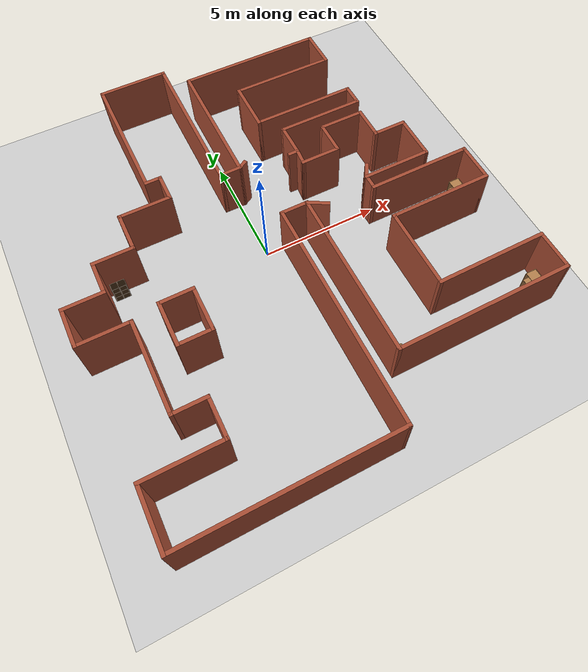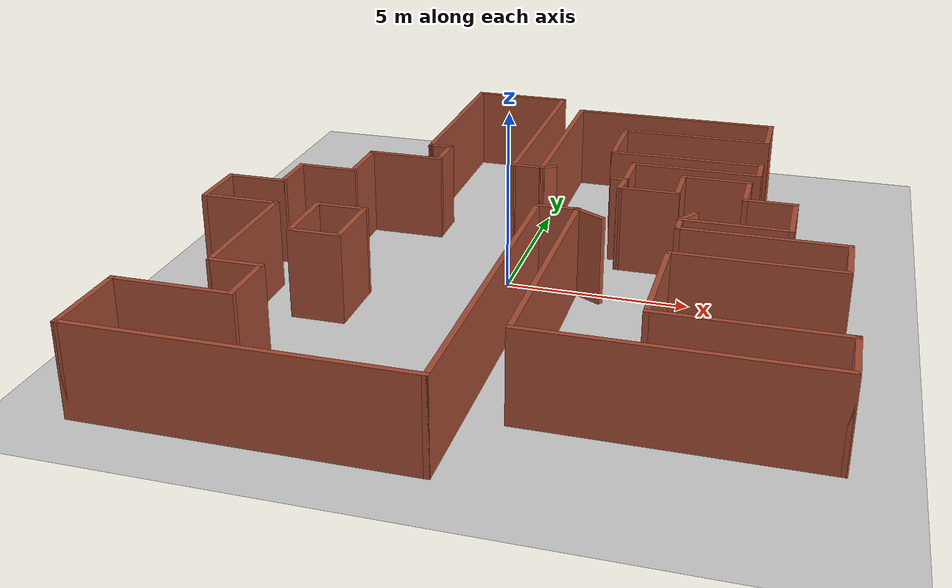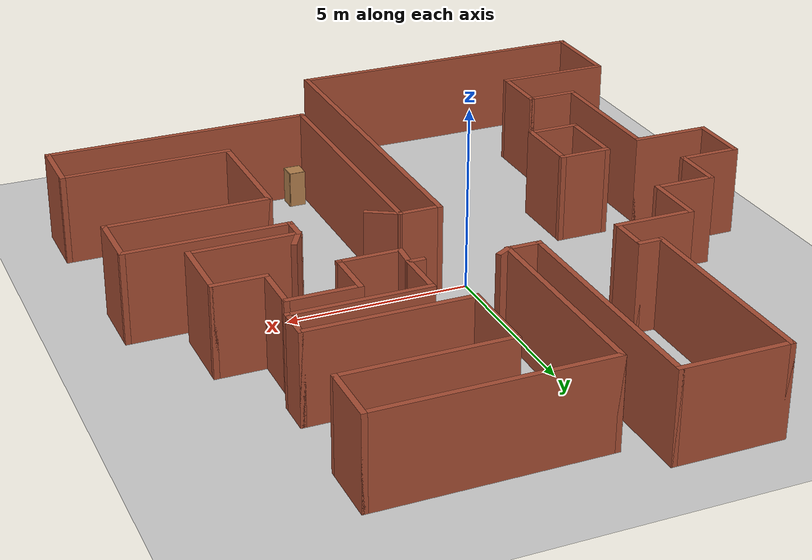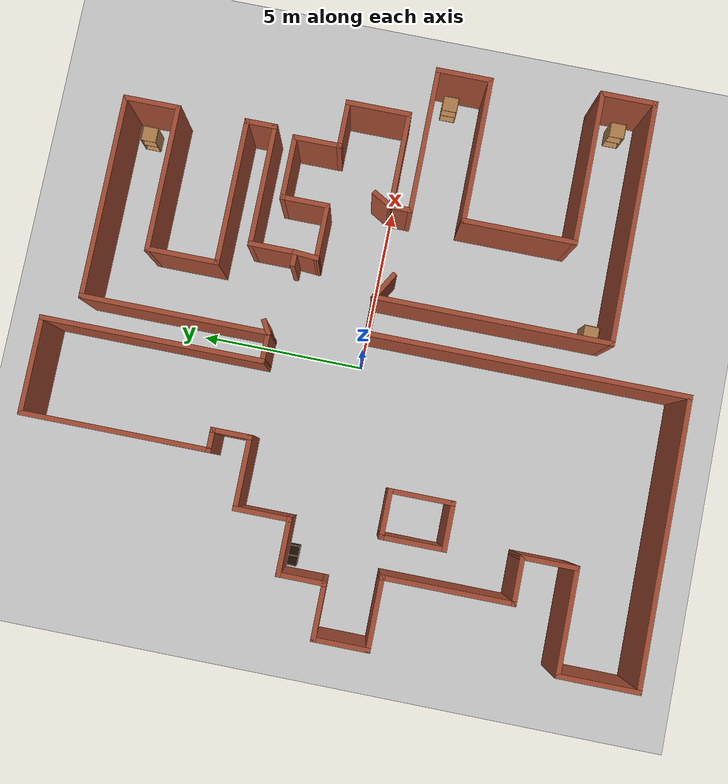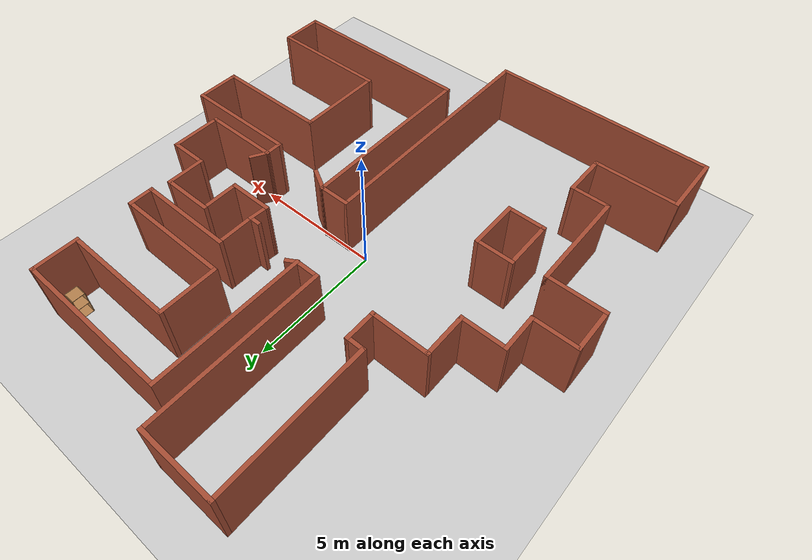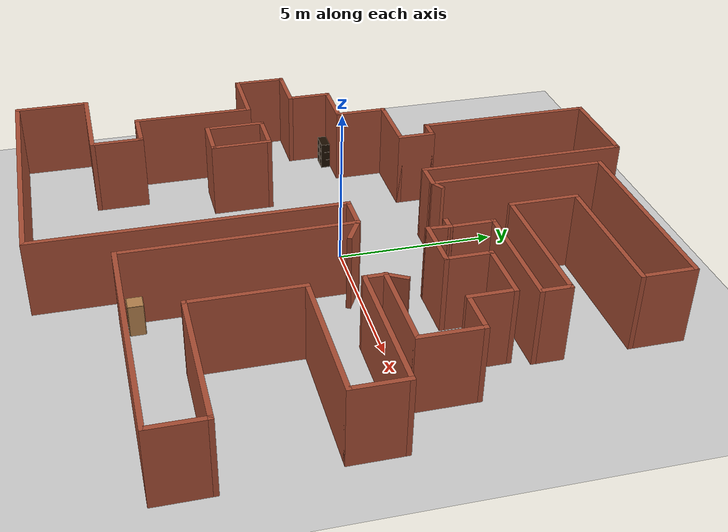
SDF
<sdf version="1.6">
 <world name="default">
  <light name="sun" type="directional">
   <pose>0 0 10 0 -0 0</pose>
   <diffuse>0.8 0.8 0.8 1</diffuse>
   <specular>0.2 0.2 0.2 1</specular>
   <attenuation>
    <range>1000</range>
    <constant>0.9</constant>
    <linear>0.01</linear>
    <quadratic>0.001</quadratic>
   </attenuation>
   <direction>-0.5 0.1 -0.9</direction>
  </light>
  <model name="ground_plane">
   <static>1</static>
   <link name="link">
    <collision name="collision">
     <geometry><plane><normal>0 0 1</normal><size>100 100</size></plane></geometry>
     <surface>
      <contact><collide_bitmask>65535</collide_bitmask></contact>
      <friction><ode><mu>100</mu><mu2>50</mu2></ode></friction>
     </surface>
    </collision>
    <visual name="visual">
     <cast_shadows>0</cast_shadows>
     <geometry><plane><normal>0 0 1</normal><size>100 100</size></plane></geometry>
     <material>
      <script><uri>file://media/materials/scripts/gazebo.material</uri><name>Gazebo/Grey</name></script>
     </material>
    </visual>
   </link>
  </model>
  <gravity>0 0 -9.8</gravity>
  <magnetic_field>6e-06 2.3e-05 -4.2e-05</magnetic_field>
  <atmosphere type="adiabatic"/>
  <physics name="default_physics" default="0" type="ode">
   <max_step_size>0.001</max_step_size>
   <real_time_factor>1</real_time_factor>
   <real_time_update_rate>1000</real_time_update_rate>
  </physics>
  <scene><ambient>0.4 0.4 0.4 1</ambient><background>0.7 0.7 0.7 1</background><shadows>1</shadows></scene>
  <audio><device>default</device></audio>
  <spherical_coordinates>
   <surface_model>EARTH_WGS84</surface_model>
   <latitude_deg>0</latitude_deg>
   <longitude_deg>0</longitude_deg>
   <elevation>0</elevation>
   <heading_deg>0</heading_deg>
  </spherical_coordinates>
  <model name="map_121">
   <pose>0.555625 -0.064925 0 0 -0 0</pose>
   <link name="Wall_0">
    <collision name="Wall_0_Collision">
     <geometry><box><size>5.75 0.15 2.5</size></box></geometry>
     <pose>0 0 1.25 0 -0 0</pose>
    </collision>
    <visual name="Wall_0_Visual">
     <pose>0 0 1.25 0 -0 0</pose>
     <geometry><box><size>5.75 0.15 2.5</size></box></geometry>
     <material>
      <script><uri>file://media/materials/scripts/gazebo.material</uri><name>Gazebo/Bricks</name></script>
      <ambient>1 1 1 1</ambient>
     </material>
     <meta><layer>0</layer></meta>
    </visual>
    <pose>-4 6.725 0 0 -0 -1.5708</pose>
   </link>
   <link name="Wall_1">
    <collision name="Wall_1_Collision">
     <geometry><box><size>0.75 0.15 2.5</size></box></geometry>
     <pose>0 0 1.25 0 -0 0</pose>
    </collision>
    <visual name="Wall_1_Visual">
     <pose>0 0 1.25 0 -0 0</pose>
     <geometry><box><size>0.75 0.15 2.5</size></box></geometry>
     <material>
      <script><uri>file://media/materials/scripts/gazebo.material</uri><name>Gazebo/Bricks</name></script>
      <ambient>1 1 1 1</ambient>
     </material>
     <meta><layer>0</layer></meta>
    </visual>
    <pose>-3.7 3.925 0 0 -0 0</pose>
   </link>
   <link name="Wall_10">
    <collision name="Wall_10_Collision">
     <geometry><box><size>1.75 0.15 2.5</size></box></geometry>
     <pose>0 0 1.25 0 -0 0</pose>
    </collision>
    <visual name="Wall_10_Visual">
     <pose>0 0 1.25 0 -0 0</pose>
     <geometry><box><size>1.75 0.15 2.5</size></box></geometry>
     <material>
      <script><uri>file://media/materials/scripts/gazebo.material</uri><name>Gazebo/Bricks</name></script>
      <ambient>1 1 1 1</ambient>
     </material>
     <meta><layer>0</layer></meta>
    </visual>
    <pose>-8.7 -0.925 0 0 -0 -1.5708</pose>
   </link>
   <link name="Wall_11">
    <collision name="Wall_11_Collision">
     <geometry><box><size>2.25 0.15 2.5</size></box></geometry>
     <pose>0 0 1.25 0 -0 0</pose>
    </collision>
    <visual name="Wall_11_Visual">
     <pose>0 0 1.25 0 -0 0</pose>
     <geometry><box><size>2.25 0.15 2.5</size></box></geometry>
     <material>
      <script><uri>file://media/materials/scripts/gazebo.material</uri><name>Gazebo/Bricks</name></script>
      <ambient>1 1 1 1</ambient>
     </material>
     <meta><layer>0</layer></meta>
    </visual>
    <pose>-7.65 -1.725 0 0 -0 0</pose>
   </link>
   <link name="Wall_12">
    <collision name="Wall_12_Collision">
     <geometry><box><size>4 0.15 2.5</size></box></geometry>
     <pose>0 0 1.25 0 -0 0</pose>
    </collision>
    <visual name="Wall_12_Visual">
     <pose>0 0 1.25 0 -0 0</pose>
     <geometry><box><size>4 0.15 2.5</size></box></geometry>
     <material>
      <script><uri>file://media/materials/scripts/gazebo.material</uri><name>Gazebo/Bricks</name></script>
      <ambient>1 1 1 1</ambient>
     </material>
     <meta><layer>0</layer></meta>
    </visual>
    <pose>-6.6 -3.65 0 0 -0 -1.5708</pose>
   </link>
   <link name="Wall_13">
    <collision name="Wall_13_Collision">
     <geometry><box><size>1.5 0.15 2.5</size></box></geometry>
     <pose>0 0 1.25 0 -0 0</pose>
    </collision>
    <visual name="Wall_13_Visual">
     <pose>0 0 1.25 0 -0 0</pose>
     <geometry><box><size>1.5 0.15 2.5</size></box></geometry>
     <material>
      <script><uri>file://media/materials/scripts/gazebo.material</uri><name>Gazebo/Bricks</name></script>
      <ambient>1 1 1 1</ambient>
     </material>
     <meta><layer>0</layer></meta>
    </visual>
    <pose>-5.925 -5.575 0 0 -0 0</pose>
   </link>
   <link name="Wall_14">
    <collision name="Wall_14_Collision">
     <geometry><box><size>1.75 0.15 2.5</size></box></geometry>
     <pose>0 0 1.25 0 -0 0</pose>
    </collision>
    <visual name="Wall_14_Visual">
     <pose>0 0 1.25 0 -0 0</pose>
     <geometry><box><size>1.75 0.15 2.5</size></box></geometry>
     <material>
      <script><uri>file://media/materials/scripts/gazebo.material</uri><name>Gazebo/Bricks</name></script>
      <ambient>1 1 1 1</ambient>
     </material>
     <meta><layer>0</layer></meta>
    </visual>
    <pose>-5.25 -6.375 0 0 -0 -1.5708</pose>
   </link>
   <link name="Wall_15">
    <collision name="Wall_15_Collision">
     <geometry><box><size>3.25 0.15 2.5</size></box></geometry>
     <pose>0 0 1.25 0 -0 0</pose>
    </collision>
    <visual name="Wall_15_Visual">
     <pose>0 0 1.25 0 -0 0</pose>
     <geometry><box><size>3.25 0.15 2.5</size></box></geometry>
     <material>
      <script><uri>file://media/materials/scripts/gazebo.material</uri><name>Gazebo/Bricks</name></script>
      <ambient>1 1 1 1</ambient>
     </material>
     <meta><layer>0</layer></meta>
    </visual>
    <pose>-6.8 -7.175 0 0 -0 3.14159</pose>
   </link>
   <link name="Wall_16">
    <collision name="Wall_16_Collision">
     <geometry><box><size>2.5 0.15 2.5</size></box></geometry>
     <pose>0 0 1.25 0 -0 0</pose>
    </collision>
    <visual name="Wall_16_Visual">
     <pose>0 0 1.25 0 -0 0</pose>
     <geometry><box><size>2.5 0.15 2.5</size></box></geometry>
     <material>
      <script><uri>file://media/materials/scripts/gazebo.material</uri><name>Gazebo/Bricks</name></script>
      <ambient>1 1 1 1</ambient>
     </material>
     <meta><layer>0</layer></meta>
    </visual>
    <pose>-8.35 -8.35 0 0 -0 -1.5708</pose>
   </link>
   <link name="Wall_17">
    <collision name="Wall_17_Collision">
     <geometry><box><size>8.75 0.15 2.5</size></box></geometry>
     <pose>0 0 1.25 0 -0 0</pose>
    </collision>
    <visual name="Wall_17_Visual">
     <pose>0 0 1.25 0 -0 0</pose>
     <geometry><box><size>8.75 0.15 2.5</size></box></geometry>
     <material>
      <script><uri>file://media/materials/scripts/gazebo.material</uri><name>Gazebo/Bricks</name></script>
      <ambient>1 1 1 1</ambient>
     </material>
     <meta><layer>0</layer></meta>
    </visual>
    <pose>-4.05 -9.525 0 0 -0 0</pose>
   </link>
   <link name="Wall_2">
    <collision name="Wall_2_Collision">
     <geometry><box><size>1.25 0.15 2.5</size></box></geometry>
     <pose>0 0 1.25 0 -0 0</pose>
    </collision>
    <visual name="Wall_2_Visual">
     <pose>0 0 1.25 0 -0 0</pose>
     <geometry><box><size>1.25 0.15 2.5</size></box></geometry>
     <material>
      <script><uri>file://media/materials/scripts/gazebo.material</uri><name>Gazebo/Bricks</name></script>
      <ambient>1 1 1 1</ambient>
     </material>
     <meta><layer>0</layer></meta>
    </visual>
    <pose>-3.4 3.375 0 0 -0 -1.5708</pose>
   </link>
   <link name="Wall_21">
    <collision name="Wall_21_Collision">
     <geometry><box><size>7.5 0.15 2.5</size></box></geometry>
     <pose>0 0 1.25 0 -0 0</pose>
    </collision>
    <visual name="Wall_21_Visual">
     <pose>0 0 1.25 0 -0 0</pose>
     <geometry><box><size>7.5 0.15 2.5</size></box></geometry>
     <material>
      <script><uri>file://media/materials/scripts/gazebo.material</uri><name>Gazebo/Bricks</name></script>
      <ambient>1 1 1 1</ambient>
     </material>
     <meta><layer>0</layer></meta>
    </visual>
    <pose>5.025 -7.025 0 0 -0 0</pose>
   </link>
   <link name="Wall_3">
    <collision name="Wall_3_Collision">
     <geometry><box><size>2.25 0.15 2.5</size></box></geometry>
     <pose>0 0 1.25 0 -0 0</pose>
    </collision>
    <visual name="Wall_3_Visual">
     <pose>0 0 1.25 0 -0 0</pose>
     <geometry><box><size>2.25 0.15 2.5</size></box></geometry>
     <material>
      <script><uri>file://media/materials/scripts/gazebo.material</uri><name>Gazebo/Bricks</name></script>
      <ambient>1 1 1 1</ambient>
     </material>
     <meta><layer>0</layer></meta>
    </visual>
    <pose>-4.45 2.825 0 0 -0 3.14159</pose>
   </link>
   <link name="Wall_31">
    <collision name="Wall_31_Collision">
     <geometry><box><size>1.75 0.15 2.5</size></box></geometry>
     <pose>0 0 1.25 0 -0 0</pose>
    </collision>
    <visual name="Wall_31_Visual">
     <pose>0 0 1.25 0 -0 0</pose>
     <geometry><box><size>1.75 0.15 2.5</size></box></geometry>
     <material>
      <script><uri>file://media/materials/scripts/gazebo.material</uri><name>Gazebo/Bricks</name></script>
      <ambient>1 1 1 1</ambient>
     </material>
     <meta><layer>0</layer></meta>
    </visual>
    <pose>8.7 -6.225 0 0 -0 1.5708</pose>
   </link>
   <link name="Wall_32">
    <collision name="Wall_32_Collision">
     <geometry><box><size>4.75 0.15 2.5</size></box></geometry>
     <pose>0 0 1.25 0 -0 0</pose>
    </collision>
    <visual name="Wall_32_Visual">
     <pose>0 0 1.25 0 -0 0</pose>
     <geometry><box><size>4.75 0.15 2.5</size></box></geometry>
     <material>
      <script><uri>file://media/materials/scripts/gazebo.material</uri><name>Gazebo/Bricks</name></script>
      <ambient>1 1 1 1</ambient>
     </material>
     <meta><layer>0</layer></meta>
    </visual>
    <pose>6.4 -5.425 0 0 -0 3.14159</pose>
   </link>
   <link name="Wall_33">
    <collision name="Wall_33_Collision">
     <geometry><box><size>3.5 0.15 2.5</size></box></geometry>
     <pose>0 0 1.25 0 -0 0</pose>
    </collision>
    <visual name="Wall_33_Visual">
     <pose>0 0 1.25 0 -0 0</pose>
     <geometry><box><size>3.5 0.15 2.5</size></box></geometry>
     <material>
      <script><uri>file://media/materials/scripts/gazebo.material</uri><name>Gazebo/Bricks</name></script>
      <ambient>1 1 1 1</ambient>
     </material>
     <meta><layer>0</layer></meta>
    </visual>
    <pose>4.1 -3.75 0 0 -0 1.5708</pose>
   </link>
   <link name="Wall_34">
    <collision name="Wall_34_Collision">
     <geometry><box><size>4.5 0.15 2.5</size></box></geometry>
     <pose>0 0 1.25 0 -0 0</pose>
    </collision>
    <visual name="Wall_34_Visual">
     <pose>0 0 1.25 0 -0 0</pose>
     <geometry><box><size>4.5 0.15 2.5</size></box></geometry>
     <material>
      <script><uri>file://media/materials/scripts/gazebo.material</uri><name>Gazebo/Bricks</name></script>
      <ambient>1 1 1 1</ambient>
     </material>
     <meta><layer>0</layer></meta>
    </visual>
    <pose>6.275 -2.075 0 0 -0 0</pose>
   </link>
   <link name="Wall_35">
    <collision name="Wall_35_Collision">
     <geometry><box><size>1.75 0.15 2.5</size></box></geometry>
     <pose>0 0 1.25 0 -0 0</pose>
    </collision>
    <visual name="Wall_35_Visual">
     <pose>0 0 1.25 0 -0 0</pose>
     <geometry><box><size>1.75 0.15 2.5</size></box></geometry>
     <material>
      <script><uri>file://media/materials/scripts/gazebo.material</uri><name>Gazebo/Bricks</name></script>
      <ambient>1 1 1 1</ambient>
     </material>
     <meta><layer>0</layer></meta>
    </visual>
    <pose>8.45 -1.275 0 0 -0 1.5708</pose>
   </link>
   <link name="Wall_36">
    <collision name="Wall_36_Collision">
     <geometry><box><size>4.5 0.15 2.5</size></box></geometry>
     <pose>0 0 1.25 0 -0 0</pose>
    </collision>
    <visual name="Wall_36_Visual">
     <pose>0 0 1.25 0 -0 0</pose>
     <geometry><box><size>4.5 0.15 2.5</size></box></geometry>
     <material>
      <script><uri>file://media/materials/scripts/gazebo.material</uri><name>Gazebo/Bricks</name></script>
      <ambient>1 1 1 1</ambient>
     </material>
     <meta><layer>0</layer></meta>
    </visual>
    <pose>6.275 -0.475 0 0 -0 3.14159</pose>
   </link>
   <link name="Wall_37">
    <collision name="Wall_37_Collision">
     <geometry><box><size>0.75 0.15 2.5</size></box></geometry>
     <pose>0 0 1.25 0 -0 0</pose>
    </collision>
    <visual name="Wall_37_Visual">
     <pose>0 0 1.25 0 -0 0</pose>
     <geometry><box><size>0.75 0.15 2.5</size></box></geometry>
     <material>
      <script><uri>file://media/materials/scripts/gazebo.material</uri><name>Gazebo/Bricks</name></script>
      <ambient>1 1 1 1</ambient>
     </material>
     <meta><layer>0</layer></meta>
    </visual>
    <pose>4.1 -0.175 0 0 -0 1.5708</pose>
   </link>
   <link name="Wall_38">
    <collision name="Wall_38_Collision">
     <geometry><box><size>3 0.15 2.5</size></box></geometry>
     <pose>0 0 1.25 0 -0 0</pose>
    </collision>
    <visual name="Wall_38_Visual">
     <pose>0 0 1.25 0 -0 0</pose>
     <geometry><box><size>3 0.15 2.5</size></box></geometry>
     <material>
      <script><uri>file://media/materials/scripts/gazebo.material</uri><name>Gazebo/Bricks</name></script>
      <ambient>1 1 1 1</ambient>
     </material>
     <meta><layer>0</layer></meta>
    </visual>
    <pose>5.525 0.125 0 0 -0 0</pose>
   </link>
   <link name="Wall_39">
    <collision name="Wall_39_Collision">
     <geometry><box><size>2 0.15 2.5</size></box></geometry>
     <pose>0 0 1.25 0 -0 0</pose>
    </collision>
    <visual name="Wall_39_Visual">
     <pose>0 0 1.25 0 -0 0</pose>
     <geometry><box><size>2 0.15 2.5</size></box></geometry>
     <material>
      <script><uri>file://media/materials/scripts/gazebo.material</uri><name>Gazebo/Bricks</name></script>
      <ambient>1 1 1 1</ambient>
     </material>
     <meta><layer>0</layer></meta>
    </visual>
    <pose>6.95 1.05 0 0 -0 1.5708</pose>
   </link>
   <link name="Wall_4">
    <collision name="Wall_4_Collision">
     <geometry><box><size>1.75 0.15 2.5</size></box></geometry>
     <pose>0 0 1.25 0 -0 0</pose>
    </collision>
    <visual name="Wall_4_Visual">
     <pose>0 0 1.25 0 -0 0</pose>
     <geometry><box><size>1.75 0.15 2.5</size></box></geometry>
     <material>
      <script><uri>file://media/materials/scripts/gazebo.material</uri><name>Gazebo/Bricks</name></script>
      <ambient>1 1 1 1</ambient>
     </material>
     <meta><layer>0</layer></meta>
    </visual>
    <pose>-5.5 2.025 0 0 -0 -1.5708</pose>
   </link>
   <link name="Wall_40">
    <collision name="Wall_40_Collision">
     <geometry><box><size>1.5 0.15 2.5</size></box></geometry>
     <pose>0 0 1.25 0 -0 0</pose>
    </collision>
    <visual name="Wall_40_Visual">
     <pose>0 0 1.25 0 -0 0</pose>
     <geometry><box><size>1.5 0.15 2.5</size></box></geometry>
     <material>
      <script><uri>file://media/materials/scripts/gazebo.material</uri><name>Gazebo/Bricks</name></script>
      <ambient>1 1 1 1</ambient>
     </material>
     <meta><layer>0</layer></meta>
    </visual>
    <pose>6.275 1.975 0 0 -0 3.14159</pose>
   </link>
   <link name="Wall_41">
    <collision name="Wall_41_Collision">
     <geometry><box><size>1.5 0.15 2.5</size></box></geometry>
     <pose>0 0 1.25 0 -0 0</pose>
    </collision>
    <visual name="Wall_41_Visual">
     <pose>0 0 1.25 0 -0 0</pose>
     <geometry><box><size>1.5 0.15 2.5</size></box></geometry>
     <material>
      <script><uri>file://media/materials/scripts/gazebo.material</uri><name>Gazebo/Bricks</name></script>
      <ambient>1 1 1 1</ambient>
     </material>
     <meta><layer>0</layer></meta>
    </visual>
    <pose>5.6 2.65 0 0 -0 1.5708</pose>
   </link>
   <link name="Wall_42">
    <collision name="Wall_42_Collision">
     <geometry><box><size>2 0.15 2.5</size></box></geometry>
     <pose>0 0 1.25 0 -0 0</pose>
    </collision>
    <visual name="Wall_42_Visual">
     <pose>0 0 1.25 0 -0 0</pose>
     <geometry><box><size>2 0.15 2.5</size></box></geometry>
     <material>
      <script><uri>file://media/materials/scripts/gazebo.material</uri><name>Gazebo/Bricks</name></script>
      <ambient>1 1 1 1</ambient>
     </material>
     <meta><layer>0</layer></meta>
    </visual>
    <pose>4.675 3.325 0 0 -0 3.14159</pose>
   </link>
   <link name="Wall_43">
    <collision name="Wall_43_Collision">
     <geometry><box><size>1.5 0.15 2.5</size></box></geometry>
     <pose>0 0 1.25 0 -0 0</pose>
    </collision>
    <visual name="Wall_43_Visual">
     <pose>0 0 1.25 0 -0 0</pose>
     <geometry><box><size>1.5 0.15 2.5</size></box></geometry>
     <material>
      <script><uri>file://media/materials/scripts/gazebo.material</uri><name>Gazebo/Bricks</name></script>
      <ambient>1 1 1 1</ambient>
     </material>
     <meta><layer>0</layer></meta>
    </visual>
    <pose>3.75 2.65 0 0 -0 -1.5708</pose>
   </link>
   <link name="Wall_45">
    <collision name="Wall_45_Collision">
     <geometry><box><size>9.75 0.15 2.5</size></box></geometry>
     <pose>0 0 1.25 0 -0 0</pose>
    </collision>
    <visual name="Wall_45_Visual">
     <pose>0 0 1.25 0 -0 0</pose>
     <geometry><box><size>9.75 0.15 2.5</size></box></geometry>
     <material>
      <script><uri>file://media/materials/scripts/gazebo.material</uri><name>Gazebo/Bricks</name></script>
      <ambient>1 1 1 1</ambient>
     </material>
     <meta><layer>0</layer></meta>
    </visual>
    <pose>0.25 -4.725 0 0 -0 1.5708</pose>
   </link>
   <link name="Wall_46">
    <collision name="Wall_46_Collision">
     <geometry><box><size>1.25 0.15 2.5</size></box></geometry>
     <pose>0 0 1.25 0 -0 0</pose>
    </collision>
    <visual name="Wall_46_Visual">
     <pose>0 0 1.25 0 -0 0</pose>
     <geometry><box><size>1.25 0.15 2.5</size></box></geometry>
     <material>
      <script><uri>file://media/materials/scripts/gazebo.material</uri><name>Gazebo/Bricks</name></script>
      <ambient>1 1 1 1</ambient>
     </material>
     <meta><layer>0</layer></meta>
    </visual>
    <pose>0.8 0.075 0 0 -0 0</pose>
   </link>
   <link name="Wall_48">
    <collision name="Wall_48_Collision">
     <geometry><box><size>7.25 0.15 2.5</size></box></geometry>
     <pose>0 0 1.25 0 -0 0</pose>
    </collision>
    <visual name="Wall_48_Visual">
     <pose>0 0 1.25 0 -0 0</pose>
     <geometry><box><size>7.25 0.15 2.5</size></box></geometry>
     <material>
      <script><uri>file://media/materials/scripts/gazebo.material</uri><name>Gazebo/Bricks</name></script>
      <ambient>1 1 1 1</ambient>
     </material>
     <meta><layer>0</layer></meta>
    </visual>
    <pose>1.35 -3.475 0 0 -0 1.5708</pose>
   </link>
   <link name="Wall_50">
    <collision name="Wall_50_Collision">
     <geometry><box><size>3 0.15 2.5</size></box></geometry>
     <pose>0 0 1.25 0 -0 0</pose>
    </collision>
    <visual name="Wall_50_Visual">
     <pose>0 0 1.25 0 -0 0</pose>
     <geometry><box><size>3 0.15 2.5</size></box></geometry>
     <material>
      <script><uri>file://media/materials/scripts/gazebo.material</uri><name>Gazebo/Bricks</name></script>
      <ambient>1 1 1 1</ambient>
     </material>
     <meta><layer>0</layer></meta>
    </visual>
    <pose>-2.575 9.525 0 0 -0 0</pose>
   </link>
   <link name="Wall_51">
    <collision name="Wall_51_Collision">
     <geometry><box><size>6.75 0.15 2.5</size></box></geometry>
     <pose>0 0 1.25 0 -0 0</pose>
    </collision>
    <visual name="Wall_51_Visual">
     <pose>0 0 1.25 0 -0 0</pose>
     <geometry><box><size>6.75 0.15 2.5</size></box></geometry>
     <material>
      <script><uri>file://media/materials/scripts/gazebo.material</uri><name>Gazebo/Bricks</name></script>
      <ambient>1 1 1 1</ambient>
     </material>
     <meta><layer>0</layer></meta>
    </visual>
    <pose>-1.15 6.225 0 0 -0 -1.5708</pose>
   </link>
   <link name="Wall_52">
    <collision name="Wall_52_Collision">
     <geometry><box><size>1 0.15 2.5</size></box></geometry>
     <pose>0 0 1.25 0 -0 0</pose>
    </collision>
    <visual name="Wall_52_Visual">
     <pose>0 0 1.25 0 -0 0</pose>
     <geometry><box><size>1 0.15 2.5</size></box></geometry>
     <material>
      <script><uri>file://media/materials/scripts/gazebo.material</uri><name>Gazebo/Bricks</name></script>
      <ambient>1 1 1 1</ambient>
     </material>
     <meta><layer>0</layer></meta>
    </visual>
    <pose>-0.725 2.925 0 0 -0 0</pose>
   </link>
   <link name="Wall_53">
    <collision name="Wall_53_Collision">
     <geometry><box><size>5.75 0.15 2.5</size></box></geometry>
     <pose>0 0 1.25 0 -0 0</pose>
    </collision>
    <visual name="Wall_53_Visual">
     <pose>0 0 1.25 0 -0 0</pose>
     <geometry><box><size>5.75 0.15 2.5</size></box></geometry>
     <material>
      <script><uri>file://media/materials/scripts/gazebo.material</uri><name>Gazebo/Bricks</name></script>
      <ambient>1 1 1 1</ambient>
     </material>
     <meta><layer>0</layer></meta>
    </visual>
    <pose>-0.3 5.725 0 0 -0 1.5708</pose>
   </link>
   <link name="Wall_54">
    <collision name="Wall_54_Collision">
     <geometry><box><size>6.25 0.15 2.5</size></box></geometry>
     <pose>0 0 1.25 0 -0 0</pose>
    </collision>
    <visual name="Wall_54_Visual">
     <pose>0 0 1.25 0 -0 0</pose>
     <geometry><box><size>6.25 0.15 2.5</size></box></geometry>
     <material>
      <script><uri>file://media/materials/scripts/gazebo.material</uri><name>Gazebo/Bricks</name></script>
      <ambient>1 1 1 1</ambient>
     </material>
     <meta><layer>0</layer></meta>
    </visual>
    <pose>2.75 8.525 0 0 -0 0</pose>
   </link>
   <link name="Wall_57">
    <collision name="Wall_57_Collision">
     <geometry><box><size>1.75 0.15 2.5</size></box></geometry>
     <pose>0 0 1.25 0 -0 0</pose>
    </collision>
    <visual name="Wall_57_Visual">
     <pose>0 0 1.25 0 -0 0</pose>
     <geometry><box><size>1.75 0.15 2.5</size></box></geometry>
     <material>
      <script><uri>file://media/materials/scripts/gazebo.material</uri><name>Gazebo/Bricks</name></script>
      <ambient>1 1 1 1</ambient>
     </material>
     <meta><layer>0</layer></meta>
    </visual>
    <pose>5.8 7.725 0 0 -0 -1.5708</pose>
   </link>
   <link name="Wall_58">
    <collision name="Wall_58_Collision">
     <geometry><box><size>4.5 0.15 2.5</size></box></geometry>
     <pose>0 0 1.25 0 -0 0</pose>
    </collision>
    <visual name="Wall_58_Visual">
     <pose>0 0 1.25 0 -0 0</pose>
     <geometry><box><size>4.5 0.15 2.5</size></box></geometry>
     <material>
      <script><uri>file://media/materials/scripts/gazebo.material</uri><name>Gazebo/Bricks</name></script>
      <ambient>1 1 1 1</ambient>
     </material>
     <meta><layer>0</layer></meta>
    </visual>
    <pose>3.625 6.925 0 0 -0 3.14159</pose>
   </link>
   <link name="Wall_59">
    <collision name="Wall_59_Collision">
     <geometry><box><size>2.25 0.15 2.5</size></box></geometry>
     <pose>0 0 1.25 0 -0 0</pose>
    </collision>
    <visual name="Wall_59_Visual">
     <pose>0 0 1.25 0 -0 0</pose>
     <geometry><box><size>2.25 0.15 2.5</size></box></geometry>
     <material>
      <script><uri>file://media/materials/scripts/gazebo.material</uri><name>Gazebo/Bricks</name></script>
      <ambient>1 1 1 1</ambient>
     </material>
     <meta><layer>0</layer></meta>
    </visual>
    <pose>1.45 5.875 0 0 -0 -1.5708</pose>
   </link>
   <link name="Wall_60">
    <collision name="Wall_60_Collision">
     <geometry><box><size>4.5 0.15 2.5</size></box></geometry>
     <pose>0 0 1.25 0 -0 0</pose>
    </collision>
    <visual name="Wall_60_Visual">
     <pose>0 0 1.25 0 -0 0</pose>
     <geometry><box><size>4.5 0.15 2.5</size></box></geometry>
     <material>
      <script><uri>file://media/materials/scripts/gazebo.material</uri><name>Gazebo/Bricks</name></script>
      <ambient>1 1 1 1</ambient>
     </material>
     <meta><layer>0</layer></meta>
    </visual>
    <pose>3.625 4.825 0 0 -0 0</pose>
   </link>
   <link name="Wall_61">
    <collision name="Wall_61_Collision">
     <geometry><box><size>1 0.15 2.5</size></box></geometry>
     <pose>0 0 1.25 0 -0 0</pose>
    </collision>
    <visual name="Wall_61_Visual">
     <pose>0 0 1.25 0 -0 0</pose>
     <geometry><box><size>1 0.15 2.5</size></box></geometry>
     <material>
      <script><uri>file://media/materials/scripts/gazebo.material</uri><name>Gazebo/Bricks</name></script>
      <ambient>1 1 1 1</ambient>
     </material>
     <meta><layer>0</layer></meta>
    </visual>
    <pose>5.8 4.4 0 0 -0 -1.5708</pose>
   </link>
   <link name="Wall_65">
    <collision name="Wall_65_Collision">
     <geometry><box><size>3.75 0.15 2.5</size></box></geometry>
     <pose>0 0 1.25 0 -0 0</pose>
    </collision>
    <visual name="Wall_65_Visual">
     <pose>0 0 1.25 0 -0 0</pose>
     <geometry><box><size>3.75 0.15 2.5</size></box></geometry>
     <material>
      <script><uri>file://media/materials/scripts/gazebo.material</uri><name>Gazebo/Bricks</name></script>
      <ambient>1 1 1 1</ambient>
     </material>
     <meta><layer>0</layer></meta>
    </visual>
    <pose>4 3.975 0 0 -0 3.14159</pose>
   </link>
   <link name="Wall_66">
    <collision name="Wall_66_Collision">
     <geometry><box><size>1.5 0.15 2.5</size></box></geometry>
     <pose>0 0 1.25 0 -0 0</pose>
    </collision>
    <visual name="Wall_66_Visual">
     <pose>0 0 1.25 0 -0 0</pose>
     <geometry><box><size>1.5 0.15 2.5</size></box></geometry>
     <material>
      <script><uri>file://media/materials/scripts/gazebo.material</uri><name>Gazebo/Bricks</name></script>
      <ambient>1 1 1 1</ambient>
     </material>
     <meta><layer>0</layer></meta>
    </visual>
    <pose>2.2 3.3 0 0 -0 -1.5708</pose>
   </link>
   <link name="Wall_69">
    <collision name="Wall_69_Collision">
     <geometry><box><size>1 0.15 2.5</size></box></geometry>
     <pose>0 0 1.25 0 -0 0</pose>
    </collision>
    <visual name="Wall_69_Visual">
     <pose>0 0 1.25 0 -0 0</pose>
     <geometry><box><size>1 0.15 2.5</size></box></geometry>
     <material>
      <script><uri>file://media/materials/scripts/gazebo.material</uri><name>Gazebo/Bricks</name></script>
      <ambient>1 1 1 1</ambient>
     </material>
     <meta><layer>0</layer></meta>
    </visual>
    <pose>1.71806 -0.1375 0 0 -0 -0.523599</pose>
   </link>
   <link name="Wall_7">
    <collision name="Wall_7_Collision">
     <geometry><box><size>1.75 0.15 2.5</size></box></geometry>
     <pose>0 0 1.25 0 -0 0</pose>
    </collision>
    <visual name="Wall_7_Visual">
     <pose>0 0 1.25 0 -0 0</pose>
     <geometry><box><size>1.75 0.15 2.5</size></box></geometry>
     <material>
      <script><uri>file://media/materials/scripts/gazebo.material</uri><name>Gazebo/Bricks</name></script>
      <ambient>1 1 1 1</ambient>
     </material>
     <meta><layer>0</layer></meta>
    </visual>
    <pose>-6.3 1.225 0 0 -0 3.14159</pose>
   </link>
   <link name="Wall_71">
    <collision name="Wall_71_Collision">
     <geometry><box><size>0.75 0.15 2.5</size></box></geometry>
     <pose>0 0 1.25 0 -0 0</pose>
    </collision>
    <visual name="Wall_71_Visual">
     <pose>0 0 1.25 0 -0 0</pose>
     <geometry><box><size>0.75 0.15 2.5</size></box></geometry>
     <material>
      <script><uri>file://media/materials/scripts/gazebo.material</uri><name>Gazebo/Bricks</name></script>
      <ambient>1 1 1 1</ambient>
     </material>
     <meta><layer>0</layer></meta>
    </visual>
    <pose>4.25 0.384808 0 0 -0 1.0472</pose>
   </link>
   <link name="Wall_73">
    <collision name="Wall_73_Collision">
     <geometry><box><size>0.5 0.15 2.5</size></box></geometry>
     <pose>0 0 1.25 0 -0 0</pose>
    </collision>
    <visual name="Wall_73_Visual">
     <pose>0 0 1.25 0 -0 0</pose>
     <geometry><box><size>0.5 0.15 2.5</size></box></geometry>
     <material>
      <script><uri>file://media/materials/scripts/gazebo.material</uri><name>Gazebo/Bricks</name></script>
      <ambient>1 1 1 1</ambient>
     </material>
     <meta><layer>0</layer></meta>
    </visual>
    <pose>-0.148446 3.0125 0 0 -0 0.523599</pose>
   </link>
   <link name="Wall_75">
    <collision name="Wall_75_Collision">
     <geometry><box><size>0.5 0.15 2.5</size></box></geometry>
     <pose>0 0 1.25 0 -0 0</pose>
    </collision>
    <visual name="Wall_75_Visual">
     <pose>0 0 1.25 0 -0 0</pose>
     <geometry><box><size>0.5 0.15 2.5</size></box></geometry>
     <material>
      <script><uri>file://media/materials/scripts/gazebo.material</uri><name>Gazebo/Bricks</name></script>
      <ambient>1 1 1 1</ambient>
     </material>
     <meta><layer>0</layer></meta>
    </visual>
    <pose>2.025 2.625 0 0 -0 3.14159</pose>
   </link>
   <link name="Wall_78">
    <collision name="Wall_78_Collision">
     <geometry><box><size>1.5 0.15 2.5</size></box></geometry>
     <pose>0 0 1.25 0 -0 0</pose>
    </collision>
    <visual name="Wall_78_Visual">
     <pose>0 0 1.25 0 -0 0</pose>
     <geometry><box><size>1.5 0.15 2.5</size></box></geometry>
     <material>
      <script><uri>file://media/materials/scripts/gazebo.material</uri><name>Gazebo/Bricks</name></script>
      <ambient>1 1 1 1</ambient>
     </material>
     <meta><layer>0</layer></meta>
    </visual>
    <pose>-4.79951 -3.32964 0 0 -0 0</pose>
   </link>
   <link name="Wall_79">
    <collision name="Wall_79_Collision">
     <geometry><box><size>2 0.15 2.5</size></box></geometry>
     <pose>0 0 1.25 0 -0 0</pose>
    </collision>
    <visual name="Wall_79_Visual">
     <pose>0 0 1.25 0 -0 0</pose>
     <geometry><box><size>2 0.15 2.5</size></box></geometry>
     <material>
      <script><uri>file://media/materials/scripts/gazebo.material</uri><name>Gazebo/Bricks</name></script>
      <ambient>1 1 1 1</ambient>
     </material>
     <meta><layer>0</layer></meta>
    </visual>
    <pose>-4.12451 -2.40463 0 0 -0 1.5708</pose>
   </link>
   <link name="Wall_8">
    <collision name="Wall_8_Collision">
     <geometry><box><size>1.5 0.15 2.5</size></box></geometry>
     <pose>0 0 1.25 0 -0 0</pose>
    </collision>
    <visual name="Wall_8_Visual">
     <pose>0 0 1.25 0 -0 0</pose>
     <geometry><box><size>1.5 0.15 2.5</size></box></geometry>
     <material>
      <script><uri>file://media/materials/scripts/gazebo.material</uri><name>Gazebo/Bricks</name></script>
      <ambient>1 1 1 1</ambient>
     </material>
     <meta><layer>0</layer></meta>
    </visual>
    <pose>-7.1 0.55 0 0 -0 -1.5708</pose>
   </link>
   <link name="Wall_80">
    <collision name="Wall_80_Collision">
     <geometry><box><size>1.5 0.15 2.5</size></box></geometry>
     <pose>0 0 1.25 0 -0 0</pose>
    </collision>
    <visual name="Wall_80_Visual">
     <pose>0 0 1.25 0 -0 0</pose>
     <geometry><box><size>1.5 0.15 2.5</size></box></geometry>
     <material>
      <script><uri>file://media/materials/scripts/gazebo.material</uri><name>Gazebo/Bricks</name></script>
      <ambient>1 1 1 1</ambient>
     </material>
     <meta><layer>0</layer></meta>
    </visual>
    <pose>-4.79951 -1.47964 0 0 -0 3.14159</pose>
   </link>
   <link name="Wall_82">
    <collision name="Wall_82_Collision">
     <geometry><box><size>2 0.15 2.5</size></box></geometry>
     <pose>0 0 1.25 0 -0 0</pose>
    </collision>
    <visual name="Wall_82_Visual">
     <pose>0 0 1.25 0 -0 0</pose>
     <geometry><box><size>2 0.15 2.5</size></box></geometry>
     <material>
      <script><uri>file://media/materials/scripts/gazebo.material</uri><name>Gazebo/Bricks</name></script>
      <ambient>1 1 1 1</ambient>
     </material>
     <meta><layer>0</layer></meta>
    </visual>
    <pose>-5.47451 -2.40463 0 0 -0 -1.5708</pose>
   </link>
   <link name="Wall_84">
    <collision name="Wall_84_Collision">
     <geometry><box><size>1.75 0.15 2.5</size></box></geometry>
     <pose>0 0 1.25 0 -0 0</pose>
    </collision>
    <visual name="Wall_84_Visual">
     <pose>0 0 1.25 0 -0 0</pose>
     <geometry><box><size>1.75 0.15 2.5</size></box></geometry>
     <material>
      <script><uri>file://media/materials/scripts/gazebo.material</uri><name>Gazebo/Bricks</name></script>
      <ambient>1 1 1 1</ambient>
     </material>
     <meta><layer>0</layer></meta>
    </visual>
    <pose>2.95 1.975 0 0 -0 3.14159</pose>
   </link>
   <link name="Wall_85">
    <collision name="Wall_85_Collision">
     <geometry><box><size>0.80192 0.15 2.5</size></box></geometry>
     <pose>0 0 1.25 0 -0 0</pose>
    </collision>
    <visual name="Wall_85_Visual">
     <pose>0 0 1.25 0 -0 0</pose>
     <geometry><box><size>0.80192 0.15 2.5</size></box></geometry>
     <material>
      <script><uri>file://media/materials/scripts/gazebo.material</uri><name>Gazebo/Bricks</name></script>
      <ambient>1 1 1 1</ambient>
     </material>
     <meta><layer>0</layer></meta>
    </visual>
    <pose>2.175 2.3 0 0 -0 1.49402</pose>
   </link>
   <link name="Wall_9">
    <collision name="Wall_9_Collision">
     <geometry><box><size>1.75 0.15 2.5</size></box></geometry>
     <pose>0 0 1.25 0 -0 0</pose>
    </collision>
    <visual name="Wall_9_Visual">
     <pose>0 0 1.25 0 -0 0</pose>
     <geometry><box><size>1.75 0.15 2.5</size></box></geometry>
     <material>
      <script><uri>file://media/materials/scripts/gazebo.material</uri><name>Gazebo/Bricks</name></script>
      <ambient>1 1 1 1</ambient>
     </material>
     <meta><layer>0</layer></meta>
    </visual>
    <pose>-7.9 -0.125 0 0 -0 3.14159</pose>
   </link>
   <static>1</static>
  </model>
  <model name="cabinet">
   <static>1</static>
   <link name="cabinet_bottom_plate">
    <inertial>
     <pose>0 0 -1 0 -0 0</pose>
     <inertia><ixx>2.05</ixx><ixy>0</ixy><ixz>0</ixz><iyy>2.05</iyy><iyz>0</iyz><izz>2.05</izz></inertia>
     <mass>25</mass>
    </inertial>
    <collision name="cabinet_bottom_plate_geom">
     <pose>0 0 0.01 0 -0 0</pose>
     <geometry><box><size>0.45 0.45 0.02</size></box></geometry>
    </collision>
    <visual name="cabinet_bottom_plate_geom_visual">
     <pose>0 0 0.01 0 -0 0</pose>
     <geometry><box><size>0.45 0.45 0.02</size></box></geometry>
     <material>
      <script><uri>file://media/materials/scripts/gazebo.material</uri><name>Gazebo/Wood</name></script>
     </material>
    </visual>
    <collision name="cabinet_bottom_plate_geom_cabinet_back_plate">
     <pose>0.235 0 0.51 0 -0 0</pose>
     <geometry><box><size>0.02 0.45 1.02</size></box></geometry>
    </collision>
    <visual name="cabinet_bottom_plate_geom_cabinet_back_plate_visual">
     <pose>0.235 0 0.51 0 -0 0</pose>
     <geometry><box><size>0.02 0.45 1.02</size></box></geometry>
     <material>
      <script><uri>file://media/materials/scripts/gazebo.material</uri><name>Gazebo/Wood</name></script>
     </material>
    </visual>
    <collision name="cabinet_bottom_plate_geom_cabinet_left_plate">
     <pose>0 0.235 0.51 0 -0 0</pose>
     <geometry><box><size>0.45 0.02 1.02</size></box></geometry>
    </collision>
    <visual name="cabinet_bottom_plate_geom_cabinet_left_plate_visual">
     <pose>0 0.235 0.51 0 -0 0</pose>
     <geometry><box><size>0.45 0.02 1.02</size></box></geometry>
     <material>
      <script><uri>file://media/materials/scripts/gazebo.material</uri><name>Gazebo/Wood</name></script>
     </material>
    </visual>
    <collision name="cabinet_bottom_plate_geom_cabinet_middle_plate">
     <pose>0 0 0.51 0 -0 0</pose>
     <geometry><box><size>0.45 0.45 0.02</size></box></geometry>
    </collision>
    <visual name="cabinet_bottom_plate_geom_cabinet_middle_plate_visual">
     <pose>0 0 0.51 0 -0 0</pose>
     <geometry><box><size>0.45 0.45 0.02</size></box></geometry>
     <material>
      <script><uri>file://media/materials/scripts/gazebo.material</uri><name>Gazebo/Wood</name></script>
     </material>
    </visual>
    <collision name="cabinet_bottom_plate_geom_cabinet_right_plate">
     <pose>0 -0.235 0.51 0 -0 0</pose>
     <geometry><box><size>0.45 0.02 1.02</size></box></geometry>
    </collision>
    <visual name="cabinet_bottom_plate_geom_cabinet_right_plate_visual">
     <pose>0 -0.235 0.51 0 -0 0</pose>
     <geometry><box><size>0.45 0.02 1.02</size></box></geometry>
     <material>
      <script><uri>file://media/materials/scripts/gazebo.material</uri><name>Gazebo/Wood</name></script>
     </material>
    </visual>
    <collision name="cabinet_bottom_plate_geom_cabinet_top_plate">
     <pose>0 0 1.01 0 -0 0</pose>
     <geometry><box><size>0.45 0.45 0.02</size></box></geometry>
    </collision>
    <visual name="cabinet_bottom_plate_geom_cabinet_top_plate_visual">
     <pose>0 0 1.01 0 -0 0</pose>
     <geometry><box><size>0.45 0.45 0.02</size></box></geometry>
     <material>
      <script><uri>file://media/materials/scripts/gazebo.material</uri><name>Gazebo/Wood</name></script>
     </material>
    </visual>
   </link>
   <pose>2.3162 -6.68238 0 0 -0 0</pose>
  </model>
  <model name="cabinet_0">
   <static>1</static>
   <link name="cabinet_bottom_plate">
    <inertial>
     <pose>0 0 -1 0 -0 0</pose>
     <inertia><ixx>2.05</ixx><ixy>0</ixy><ixz>0</ixz><iyy>2.05</iyy><iyz>0</iyz><izz>2.05</izz></inertia>
     <mass>25</mass>
    </inertial>
    <collision name="cabinet_bottom_plate_geom">
     <pose>0 0 0.01 0 -0 0</pose>
     <geometry><box><size>0.45 0.45 0.02</size></box></geometry>
    </collision>
    <visual name="cabinet_bottom_plate_geom_visual">
     <pose>0 0 0.01 0 -0 0</pose>
     <geometry><box><size>0.45 0.45 0.02</size></box></geometry>
     <material>
      <script><uri>file://media/materials/scripts/gazebo.material</uri><name>Gazebo/Wood</name></script>
     </material>
    </visual>
    <collision name="cabinet_bottom_plate_geom_cabinet_back_plate">
     <pose>0.235 0 0.51 0 -0 0</pose>
     <geometry><box><size>0.02 0.45 1.02</size></box></geometry>
    </collision>
    <visual name="cabinet_bottom_plate_geom_cabinet_back_plate_visual">
     <pose>0.235 0 0.51 0 -0 0</pose>
     <geometry><box><size>0.02 0.45 1.02</size></box></geometry>
     <material>
      <script><uri>file://media/materials/scripts/gazebo.material</uri><name>Gazebo/Wood</name></script>
     </material>
    </visual>
    <collision name="cabinet_bottom_plate_geom_cabinet_left_plate">
     <pose>0 0.235 0.51 0 -0 0</pose>
     <geometry><box><size>0.45 0.02 1.02</size></box></geometry>
    </collision>
    <visual name="cabinet_bottom_plate_geom_cabinet_left_plate_visual">
     <pose>0 0.235 0.51 0 -0 0</pose>
     <geometry><box><size>0.45 0.02 1.02</size></box></geometry>
     <material>
      <script><uri>file://media/materials/scripts/gazebo.material</uri><name>Gazebo/Wood</name></script>
     </material>
    </visual>
    <collision name="cabinet_bottom_plate_geom_cabinet_middle_plate">
     <pose>0 0 0.51 0 -0 0</pose>
     <geometry><box><size>0.45 0.45 0.02</size></box></geometry>
    </collision>
    <visual name="cabinet_bottom_plate_geom_cabinet_middle_plate_visual">
     <pose>0 0 0.51 0 -0 0</pose>
     <geometry><box><size>0.45 0.45 0.02</size></box></geometry>
     <material>
      <script><uri>file://media/materials/scripts/gazebo.material</uri><name>Gazebo/Wood</name></script>
     </material>
    </visual>
    <collision name="cabinet_bottom_plate_geom_cabinet_right_plate">
     <pose>0 -0.235 0.51 0 -0 0</pose>
     <geometry><box><size>0.45 0.02 1.02</size></box></geometry>
    </collision>
    <visual name="cabinet_bottom_plate_geom_cabinet_right_plate_visual">
     <pose>0 -0.235 0.51 0 -0 0</pose>
     <geometry><box><size>0.45 0.02 1.02</size></box></geometry>
     <material>
      <script><uri>file://media/materials/scripts/gazebo.material</uri><name>Gazebo/Wood</name></script>
     </material>
    </visual>
    <collision name="cabinet_bottom_plate_geom_cabinet_top_plate">
     <pose>0 0 1.01 0 -0 0</pose>
     <geometry><box><size>0.45 0.45 0.02</size></box></geometry>
    </collision>
    <visual name="cabinet_bottom_plate_geom_cabinet_top_plate_visual">
     <pose>0 0 1.01 0 -0 0</pose>
     <geometry><box><size>0.45 0.45 0.02</size></box></geometry>
     <material>
      <script><uri>file://media/materials/scripts/gazebo.material</uri><name>Gazebo/Wood</name></script>
     </material>
    </visual>
   </link>
   <pose>5.79208 7.87188 0 0 -0 0</pose>
  </model>
  <model name="6_Cube_StorageE">
   <link name="Wall_0">
    <pose>0 0 0.01 0 -0 0</pose>
    <inertial>
     <mass>1.6201</mass>
     <inertia><ixx>0.0119</ixx><iyy>0.0631</iyy><izz>0.0513</izz><ixy>0</ixy><ixz>0</ixz><iyz>0</iyz></inertia>
    </inertial>
    <collision name="Wall_0_Collision"><geometry><box><size>0.616 0.296 0.02</size></box></geometry></collision>
    <visual name="Wall_0_Visual">
     <geometry><box><size>0.616 0.296 0.02</size></box></geometry>
     <material>
      <script><uri>file://media/materials/scripts/gazebo.material</uri><name>Gazebo/Grey</name></script>
      <ambient>0.105882 0.0509804 0 1</ambient>
     </material>
    </visual>
   </link>
   <joint name="0_2" type="fixed">
    <pose>-0.308 0 0 0 -0 0</pose>
    <parent>Wall_2</parent>
    <child>Wall_0</child>
    <axis>
     <xyz>1 0 0</xyz>
     <use_parent_model_frame>0</use_parent_model_frame>
     <limit><lower>-1e+16</lower><upper>1e+16</upper></limit>
    </axis>
   </joint>
   <joint name="0_12" type="fixed">
    <parent>Wall_12</parent>
    <child>Wall_0</child>
    <axis>
     <xyz>0 0 1</xyz>
     <use_parent_model_frame>0</use_parent_model_frame>
     <limit><lower>-1e+16</lower><upper>1e+16</upper></limit>
    </axis>
   </joint>
   <joint name="0_4" type="fixed">
    <pose>0.308 0 0 0 -0 0</pose>
    <parent>Wall_4</parent>
    <child>Wall_0</child>
    <axis>
     <xyz>1 0 0</xyz>
     <use_parent_model_frame>0</use_parent_model_frame>
     <limit><lower>-1e+16</lower><upper>1e+16</upper></limit>
    </axis>
   </joint>
   <link name="Wall_10">
    <pose>0 0 0.61 0 -0 0</pose>
    <inertial>
     <mass>1.6201</mass>
     <inertia><ixx>0.0119</ixx><iyy>0.0631</iyy><izz>0.0513</izz><ixy>0</ixy><ixz>0</ixz><iyz>0</iyz></inertia>
    </inertial>
    <collision name="Wall_10_Collision"><geometry><box><size>0.616 0.296 0.02</size></box></geometry></collision>
    <visual name="Wall_10_Visual">
     <geometry><box><size>0.616 0.296 0.02</size></box></geometry>
     <material>
      <script><uri>file://media/materials/scripts/gazebo.material</uri><name>Gazebo/Grey</name></script>
      <ambient>0.105882 0.0509804 0 1</ambient>
     </material>
    </visual>
   </link>
   <joint name="10_2" type="fixed">
    <pose>-0.308 0 0 0 -0 0</pose>
    <parent>Wall_2</parent>
    <child>Wall_10</child>
    <axis>
     <xyz>1 0 0</xyz>
     <use_parent_model_frame>0</use_parent_model_frame>
     <limit><lower>-1e+16</lower><upper>1e+16</upper></limit>
    </axis>
   </joint>
   <joint name="10_12" type="fixed">
    <parent>Wall_12</parent>
    <child>Wall_10</child>
    <axis>
     <xyz>0 0 1</xyz>
     <use_parent_model_frame>0</use_parent_model_frame>
     <limit><lower>-1e+16</lower><upper>1e+16</upper></limit>
    </axis>
   </joint>
   <joint name="10_4" type="fixed">
    <pose>0.308 0 0 0 -0 0</pose>
    <parent>Wall_4</parent>
    <child>Wall_10</child>
    <axis>
     <xyz>1 0 0</xyz>
     <use_parent_model_frame>0</use_parent_model_frame>
     <limit><lower>-1e+16</lower><upper>1e+16</upper></limit>
    </axis>
   </joint>
   <link name="Wall_12">
    <pose>0 0 0.4575 0 -0 0</pose>
    <inertial>
     <mass>2.4065</mass>
     <inertia><ixx>0.0177</ixx><iyy>0.1855</iyy><izz>0.168</izz><ixy>0</ixy><ixz>0</ixz><iyz>0</iyz></inertia>
    </inertial>
    <collision name="Wall_12_Collision"><geometry><box><size>0.02 0.296 0.915</size></box></geometry></collision>
    <visual name="Wall_12_Visual">
     <geometry><box><size>0.02 0.296 0.915</size></box></geometry>
     <material>
      <script><uri>file://media/materials/scripts/gazebo.material</uri><name>Gazebo/Grey</name></script>
      <ambient>0.105882 0.0509804 0 1</ambient>
     </material>
    </visual>
   </link>
   <link name="Wall_2">
    <pose>-0.298 0 0.4575 0 -0 0</pose>
    <inertial>
     <mass>2.4065</mass>
     <inertia><ixx>0.0177</ixx><iyy>0.1855</iyy><izz>0.168</izz><ixy>0</ixy><ixz>0</ixz><iyz>0</iyz></inertia>
    </inertial>
    <collision name="Wall_2_Collision"><geometry><box><size>0.02 0.296 0.915</size></box></geometry></collision>
    <visual name="Wall_2_Visual">
     <geometry><box><size>0.02 0.296 0.915</size></box></geometry>
     <material>
      <script><uri>file://media/materials/scripts/gazebo.material</uri><name>Gazebo/Grey</name></script>
      <ambient>0.105882 0.0509804 0 1</ambient>
     </material>
    </visual>
   </link>
   <link name="Wall_4">
    <pose>0.298 0 0.4575 0 -0 0</pose>
    <inertial>
     <mass>2.4065</mass>
     <inertia><ixx>0.0177</ixx><iyy>0.1855</iyy><izz>0.168</izz><ixy>0</ixy><ixz>0</ixz><iyz>0</iyz></inertia>
    </inertial>
    <collision name="Wall_4_Collision"><geometry><box><size>0.02 0.296 0.915</size></box></geometry></collision>
    <visual name="Wall_4_Visual">
     <geometry><box><size>0.02 0.296 0.915</size></box></geometry>
     <material>
      <script><uri>file://media/materials/scripts/gazebo.material</uri><name>Gazebo/Grey</name></script>
      <ambient>0.105882 0.0509804 0 1</ambient>
     </material>
    </visual>
   </link>
   <link name="Wall_6">
    <pose>0 0 0.905 0 -0 0</pose>
    <inertial>
     <mass>1.6201</mass>
     <inertia><ixx>0.0119</ixx><iyy>0.0631</iyy><izz>0.0513</izz><ixy>0</ixy><ixz>0</ixz><iyz>0</iyz></inertia>
    </inertial>
    <collision name="Wall_6_Collision"><geometry><box><size>0.616 0.296 0.02</size></box></geometry></collision>
    <visual name="Wall_6_Visual">
     <geometry><box><size>0.616 0.296 0.02</size></box></geometry>
     <material>
      <script><uri>file://media/materials/scripts/gazebo.material</uri><name>Gazebo/Grey</name></script>
      <ambient>0.105882 0.0509804 0 1</ambient>
     </material>
    </visual>
   </link>
   <joint name="6_2" type="fixed">
    <pose>-0.308 0 0 0 -0 0</pose>
    <parent>Wall_2</parent>
    <child>Wall_6</child>
    <axis>
     <xyz>2 0 0</xyz>
     <use_parent_model_frame>0</use_parent_model_frame>
     <limit><lower>-1e+16</lower><upper>1e+16</upper></limit>
    </axis>
   </joint>
   <joint name="6_12" type="fixed">
    <parent>Wall_12</parent>
    <child>Wall_6</child>
    <axis>
     <xyz>0 0 1</xyz>
     <use_parent_model_frame>0</use_parent_model_frame>
     <limit><lower>-1e+16</lower><upper>1e+16</upper></limit>
    </axis>
   </joint>
   <joint name="6_4" type="fixed">
    <pose>0.308 0 0 0 -0 0</pose>
    <parent>Wall_4</parent>
    <child>Wall_6</child>
    <axis>
     <xyz>1 0 0</xyz>
     <use_parent_model_frame>0</use_parent_model_frame>
     <limit><lower>-1e+16</lower><upper>1e+16</upper></limit>
    </axis>
   </joint>
   <link name="Wall_8">
    <pose>0 0 0.305 0 -0 0</pose>
    <inertial>
     <mass>1.6201</mass>
     <inertia><ixx>0.0119</ixx><iyy>0.0631</iyy><izz>0.0513</izz><ixy>0</ixy><ixz>0</ixz><iyz>0</iyz></inertia>
    </inertial>
    <collision name="Wall_8_Collision"><geometry><box><size>0.616 0.296 0.02</size></box></geometry></collision>
    <visual name="Wall_8_Visual">
     <geometry><box><size>0.616 0.296 0.02</size></box></geometry>
     <material>
      <script><uri>file://media/materials/scripts/gazebo.material</uri><name>Gazebo/Grey</name></script>
      <ambient>0.105882 0.0509804 0 1</ambient>
     </material>
    </visual>
   </link>
   <joint name="8_2" type="fixed">
    <pose>-0.308 0 0 0 -0 0</pose>
    <parent>Wall_2</parent>
    <child>Wall_8</child>
    <axis>
     <xyz>1 0 0</xyz>
     <use_parent_model_frame>0</use_parent_model_frame>
     <limit><lower>-1e+16</lower><upper>1e+16</upper></limit>
    </axis>
   </joint>
   <joint name="8_12" type="fixed">
    <parent>Wall_12</parent>
    <child>Wall_8</child>
    <axis>
     <xyz>0 0 1</xyz>
     <use_parent_model_frame>0</use_parent_model_frame>
     <limit><lower>-1e+16</lower><upper>1e+16</upper></limit>
    </axis>
   </joint>
   <joint name="8_4" type="fixed">
    <pose>0.308 0 0 0 -0 0</pose>
    <parent>Wall_4</parent>
    <child>Wall_8</child>
    <axis>
     <xyz>1 0 0</xyz>
     <use_parent_model_frame>0</use_parent_model_frame>
     <limit><lower>-1e+16</lower><upper>1e+16</upper></limit>
    </axis>
   </joint>
   <static>1</static>
   <pose>-6.03735 0.907536 0 0 -0 0</pose>
  </model>
  <model name="cabinet_1">
   <static>1</static>
   <link name="cabinet_bottom_plate">
    <inertial>
     <pose>0 0 -1 0 -0 0</pose>
     <inertia><ixx>2.05</ixx><ixy>0</ixy><ixz>0</ixz><iyy>2.05</iyy><iyz>0</iyz><izz>2.05</izz></inertia>
     <mass>25</mass>
    </inertial>
    <collision name="cabinet_bottom_plate_geom">
     <pose>0 0 0.01 0 -0 0</pose>
     <geometry><box><size>0.45 0.45 0.02</size></box></geometry>
    </collision>
    <visual name="cabinet_bottom_plate_geom_visual">
     <pose>0 0 0.01 0 -0 0</pose>
     <geometry><box><size>0.45 0.45 0.02</size></box></geometry>
     <material>
      <script><uri>file://media/materials/scripts/gazebo.material</uri><name>Gazebo/Wood</name></script>
     </material>
    </visual>
    <collision name="cabinet_bottom_plate_geom_cabinet_back_plate">
     <pose>0.235 0 0.51 0 -0 0</pose>
     <geometry><box><size>0.02 0.45 1.02</size></box></geometry>
    </collision>
    <visual name="cabinet_bottom_plate_geom_cabinet_back_plate_visual">
     <pose>0.235 0 0.51 0 -0 0</pose>
     <geometry><box><size>0.02 0.45 1.02</size></box></geometry>
     <material>
      <script><uri>file://media/materials/scripts/gazebo.material</uri><name>Gazebo/Wood</name></script>
     </material>
    </visual>
    <collision name="cabinet_bottom_plate_geom_cabinet_left_plate">
     <pose>0 0.235 0.51 0 -0 0</pose>
     <geometry><box><size>0.45 0.02 1.02</size></box></geometry>
    </collision>
    <visual name="cabinet_bottom_plate_geom_cabinet_left_plate_visual">
     <pose>0 0.235 0.51 0 -0 0</pose>
     <geometry><box><size>0.45 0.02 1.02</size></box></geometry>
     <material>
      <script><uri>file://media/materials/scripts/gazebo.material</uri><name>Gazebo/Wood</name></script>
     </material>
    </visual>
    <collision name="cabinet_bottom_plate_geom_cabinet_middle_plate">
     <pose>0 0 0.51 0 -0 0</pose>
     <geometry><box><size>0.45 0.45 0.02</size></box></geometry>
    </collision>
    <visual name="cabinet_bottom_plate_geom_cabinet_middle_plate_visual">
     <pose>0 0 0.51 0 -0 0</pose>
     <geometry><box><size>0.45 0.45 0.02</size></box></geometry>
     <material>
      <script><uri>file://media/materials/scripts/gazebo.material</uri><name>Gazebo/Wood</name></script>
     </material>
    </visual>
    <collision name="cabinet_bottom_plate_geom_cabinet_right_plate">
     <pose>0 -0.235 0.51 0 -0 0</pose>
     <geometry><box><size>0.45 0.02 1.02</size></box></geometry>
    </collision>
    <visual name="cabinet_bottom_plate_geom_cabinet_right_plate_visual">
     <pose>0 -0.235 0.51 0 -0 0</pose>
     <geometry><box><size>0.45 0.02 1.02</size></box></geometry>
     <material>
      <script><uri>file://media/materials/scripts/gazebo.material</uri><name>Gazebo/Wood</name></script>
     </material>
    </visual>
    <collision name="cabinet_bottom_plate_geom_cabinet_top_plate">
     <pose>0 0 1.01 0 -0 0</pose>
     <geometry><box><size>0.45 0.45 0.02</size></box></geometry>
    </collision>
    <visual name="cabinet_bottom_plate_geom_cabinet_top_plate_visual">
     <pose>0 0 1.01 0 -0 0</pose>
     <geometry><box><size>0.45 0.45 0.02</size></box></geometry>
     <material>
      <script><uri>file://media/materials/scripts/gazebo.material</uri><name>Gazebo/Wood</name></script>
     </material>
    </visual>
   </link>
   <pose>8.55211 -1.11309 0 0 -0 0</pose>
  </model>
  <model name="cabinet_2">
   <static>1</static>
   <link name="cabinet_bottom_plate">
    <inertial>
     <pose>0 0 -1 0 -0 0</pose>
     <inertia><ixx>2.05</ixx><ixy>0</ixy><ixz>0</ixz><iyy>2.05</iyy><iyz>0</iyz><izz>2.05</izz></inertia>
     <mass>25</mass>
    </inertial>
    <collision name="cabinet_bottom_plate_geom">
     <pose>0 0 0.01 0 -0 0</pose>
     <geometry><box><size>0.45 0.45 0.02</size></box></geometry>
    </collision>
    <visual name="cabinet_bottom_plate_geom_visual">
     <pose>0 0 0.01 0 -0 0</pose>
     <geometry><box><size>0.45 0.45 0.02</size></box></geometry>
     <material>
      <script><uri>file://media/materials/scripts/gazebo.material</uri><name>Gazebo/Wood</name></script>
     </material>
    </visual>
    <collision name="cabinet_bottom_plate_geom_cabinet_back_plate">
     <pose>0.235 0 0.51 0 -0 0</pose>
     <geometry><box><size>0.02 0.45 1.02</size></box></geometry>
    </collision>
    <visual name="cabinet_bottom_plate_geom_cabinet_back_plate_visual">
     <pose>0.235 0 0.51 0 -0 0</pose>
     <geometry><box><size>0.02 0.45 1.02</size></box></geometry>
     <material>
      <script><uri>file://media/materials/scripts/gazebo.material</uri><name>Gazebo/Wood</name></script>
     </material>
    </visual>
    <collision name="cabinet_bottom_plate_geom_cabinet_left_plate">
     <pose>0 0.235 0.51 0 -0 0</pose>
     <geometry><box><size>0.45 0.02 1.02</size></box></geometry>
    </collision>
    <visual name="cabinet_bottom_plate_geom_cabinet_left_plate_visual">
     <pose>0 0.235 0.51 0 -0 0</pose>
     <geometry><box><size>0.45 0.02 1.02</size></box></geometry>
     <material>
      <script><uri>file://media/materials/scripts/gazebo.material</uri><name>Gazebo/Wood</name></script>
     </material>
    </visual>
    <collision name="cabinet_bottom_plate_geom_cabinet_middle_plate">
     <pose>0 0 0.51 0 -0 0</pose>
     <geometry><box><size>0.45 0.45 0.02</size></box></geometry>
    </collision>
    <visual name="cabinet_bottom_plate_geom_cabinet_middle_plate_visual">
     <pose>0 0 0.51 0 -0 0</pose>
     <geometry><box><size>0.45 0.45 0.02</size></box></geometry>
     <material>
      <script><uri>file://media/materials/scripts/gazebo.material</uri><name>Gazebo/Wood</name></script>
     </material>
    </visual>
    <collision name="cabinet_bottom_plate_geom_cabinet_right_plate">
     <pose>0 -0.235 0.51 0 -0 0</pose>
     <geometry><box><size>0.45 0.02 1.02</size></box></geometry>
    </collision>
    <visual name="cabinet_bottom_plate_geom_cabinet_right_plate_visual">
     <pose>0 -0.235 0.51 0 -0 0</pose>
     <geometry><box><size>0.45 0.02 1.02</size></box></geometry>
     <material>
      <script><uri>file://media/materials/scripts/gazebo.material</uri><name>Gazebo/Wood</name></script>
     </material>
    </visual>
    <collision name="cabinet_bottom_plate_geom_cabinet_top_plate">
     <pose>0 0 1.01 0 -0 0</pose>
     <geometry><box><size>0.45 0.45 0.02</size></box></geometry>
    </collision>
    <visual name="cabinet_bottom_plate_geom_cabinet_top_plate_visual">
     <pose>0 0 1.01 0 -0 0</pose>
     <geometry><box><size>0.45 0.45 0.02</size></box></geometry>
     <material>
      <script><uri>file://media/materials/scripts/gazebo.material</uri><name>Gazebo/Wood</name></script>
     </material>
    </visual>
   </link>
   <pose>8.74051 -6.36928 0 0 -0 0</pose>
  </model>
 </world>
</sdf>
